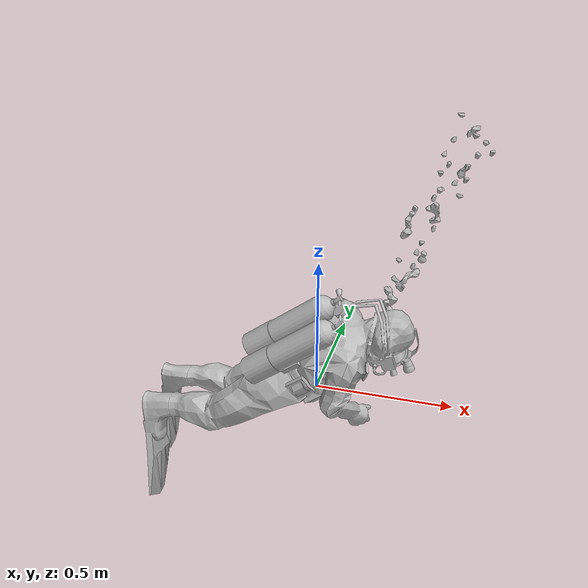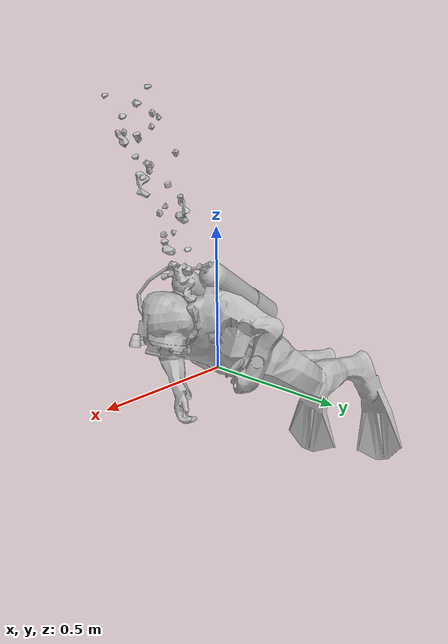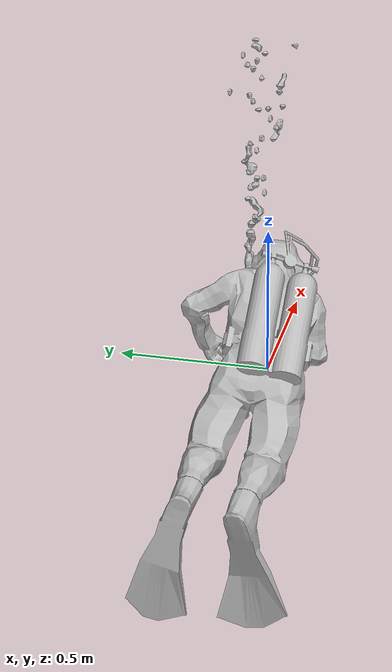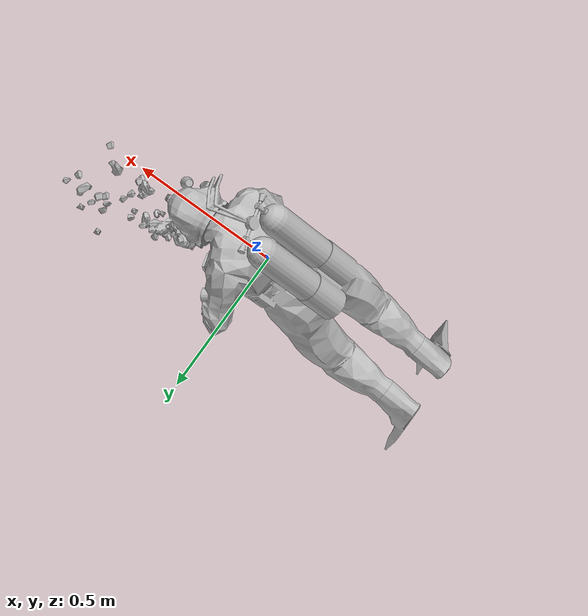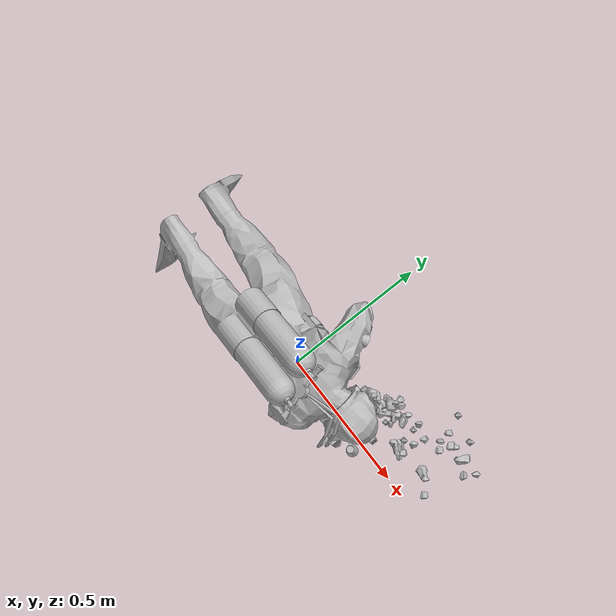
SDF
<?xml version="1.0" ?>
<sdf version="1.5">
  <model name="diver">
    <link name="link">
      <inertial>
      <pose>0 0 0.0175 0 0 0</pose>
        <mass>10</mass>
	  <inertia>
	    <ixx>0.000250308</ixx>
	    <ixy>0.0</ixy>
	    <ixz>0.0</ixz>
	    <iyy>0.000250308</iyy>
	    <iyz>0.0</iyz>
	    <izz>0.0004802</izz>
	  </inertia>
      </inertial>
      <collision name="collision">
        <pose>0 0 0.0175 0 0 0</pose>
        <geometry>
          <cylinder>
            <radius>0.098</radius>
            <length>0.035</length>
          </cylinder>
        </geometry>
      </collision>
      <visual name="visual">
	<pose> 0 0 0 0 0 1.57 </pose>
        <geometry>
          <mesh>
            <uri>model://diver/meshes/Diver.obj</uri>
            <scale> 0.001 0.001 0.001 </scale>
          </mesh>
        </geometry>
      </visual>
     <gravity>0.0</gravity>
    </link>
  </model>
</sdf>
